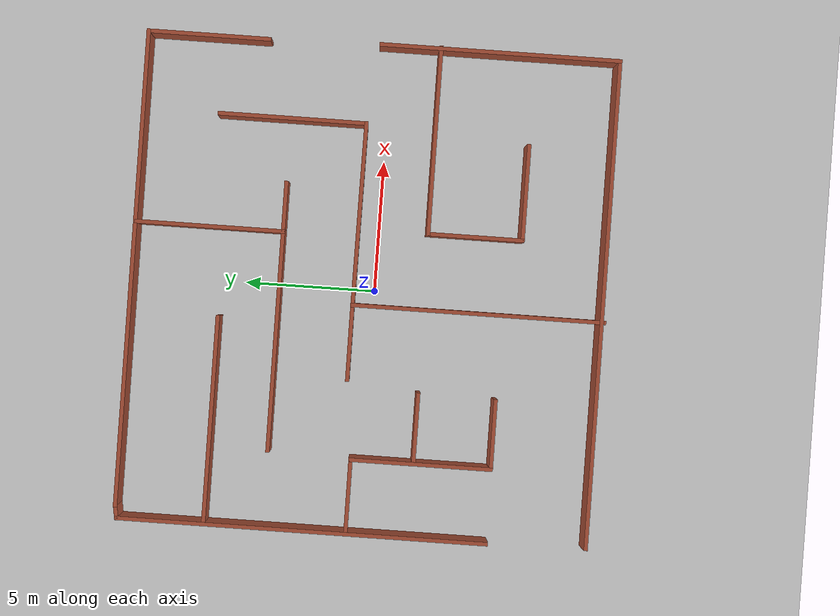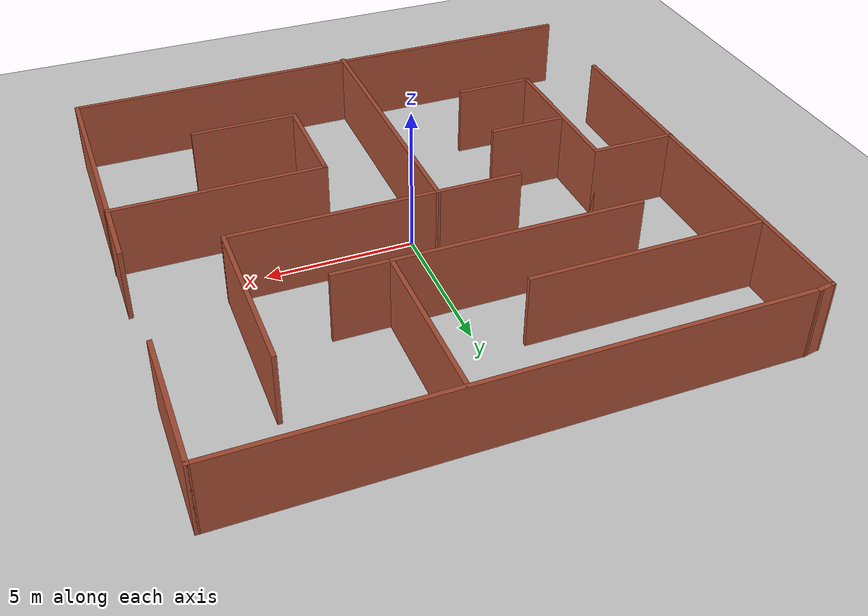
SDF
<sdf version="1.6">
 <world name="default">
  <light name="sun" type="directional">
   <pose>0 0 10 0 -0 0</pose>
   <diffuse>0.8 0.8 0.8 1</diffuse>
   <specular>0.2 0.2 0.2 1</specular>
   <attenuation>
    <range>1000</range>
    <constant>0.9</constant>
    <linear>0.01</linear>
    <quadratic>0.001</quadratic>
   </attenuation>
   <direction>-0.5 0.1 -0.9</direction>
  </light>
  <model name="ground_plane">
   <static>1</static>
   <link name="link">
    <collision name="collision">
     <geometry><plane><normal>0 0 1</normal><size>100 100</size></plane></geometry>
     <surface>
      <contact><collide_bitmask>65535</collide_bitmask></contact>
      <friction><ode><mu>100</mu><mu2>50</mu2></ode></friction>
     </surface>
    </collision>
    <visual name="visual">
     <cast_shadows>0</cast_shadows>
     <geometry><plane><normal>0 0 1</normal><size>100 100</size></plane></geometry>
     <material>
      <script><uri>file://media/materials/scripts/gazebo.material</uri><name>Gazebo/Grey</name></script>
     </material>
    </visual>
   </link>
  </model>
  <gravity>0 0 -9.8</gravity>
  <magnetic_field>6e-06 2.3e-05 -4.2e-05</magnetic_field>
  <atmosphere type="adiabatic"/>
  <physics name="default_physics" default="0" type="ode">
   <max_step_size>0.001</max_step_size>
   <real_time_factor>1</real_time_factor>
   <real_time_update_rate>1000</real_time_update_rate>
  </physics>
  <scene><ambient>0.4 0.4 0.4 1</ambient><background>0.7 0.7 0.7 1</background><shadows>1</shadows></scene>
  <audio><device>default</device></audio>
  <spherical_coordinates>
   <surface_model>EARTH_WGS84</surface_model>
   <latitude_deg>0</latitude_deg>
   <longitude_deg>0</longitude_deg>
   <elevation>0</elevation>
   <heading_deg>0</heading_deg>
  </spherical_coordinates>
  <model name="maze">
   <link name="Wall_11">
    <pose>11.0661 -4.64241 0 0 0 -1.5708</pose>
    <visual name="Wall_11_Visual">
     <pose>0 0 1.25 0 -0 0</pose>
     <geometry><box><size>9.25 0.15 2.5</size></box></geometry>
     <material>
      <script><uri>file://media/materials/scripts/gazebo.material</uri><name>Gazebo/Bricks</name></script>
      <ambient>1 1 1 1</ambient>
     </material>
     <meta><layer>0</layer></meta>
    </visual>
    <collision name="Wall_11_Collision">
     <pose>0 0 1.25 0 -0 0</pose>
     <geometry><box><size>9.25 0.15 2.5</size></box></geometry>
     <surface>
      <friction>
       <ode><mu>1</mu><mu2>1</mu2><fdir1>0 0 0</fdir1><slip1>0</slip1><slip2>0</slip2></ode>
       <torsional>
        <coefficient>1</coefficient>
        <patch_radius>0</patch_radius>
        <surface_radius>0</surface_radius>
        <use_patch_radius>1</use_patch_radius>
        <ode><slip>0</slip></ode>
       </torsional>
      </friction>
      <bounce><restitution_coefficient>0</restitution_coefficient><threshold>1e+06</threshold></bounce>
      <contact>
       <collide_without_contact>0</collide_without_contact>
       <collide_without_contact_bitmask>1</collide_without_contact_bitmask>
       <collide_bitmask>1</collide_bitmask>
       <ode>
        <soft_cfm>0</soft_cfm>
        <soft_erp>0.2</soft_erp>
        <kp>1e+13</kp>
        <kd>1</kd>
        <max_vel>0.01</max_vel>
        <min_depth>0</min_depth>
       </ode>
       <bullet>
        <split_impulse>1</split_impulse>
        <split_impulse_penetration_threshold>-0.01</split_impulse_penetration_threshold>
        <soft_cfm>0</soft_cfm>
        <soft_erp>0.2</soft_erp>
        <kp>1e+13</kp>
        <kd>1</kd>
       </bullet>
      </contact>
     </surface>
    </collision>
   </link>
   <link name="Wall_12">
    <pose>1.76615 -9.19241 0 0 -0 3.14159</pose>
    <visual name="Wall_12_Visual">
     <pose>0 0 1.25 0 -0 0</pose>
     <geometry><box><size>18.75 0.15 2.5</size></box></geometry>
     <material>
      <script><uri>file://media/materials/scripts/gazebo.material</uri><name>Gazebo/Bricks</name></script>
      <ambient>1 1 1 1</ambient>
     </material>
     <meta><layer>0</layer></meta>
    </visual>
    <collision name="Wall_12_Collision">
     <pose>0 0 1.25 0 -0 0</pose>
     <geometry><box><size>18.75 0.15 2.5</size></box></geometry>
     <surface>
      <friction>
       <ode><mu>1</mu><mu2>1</mu2><fdir1>0 0 0</fdir1><slip1>0</slip1><slip2>0</slip2></ode>
       <torsional>
        <coefficient>1</coefficient>
        <patch_radius>0</patch_radius>
        <surface_radius>0</surface_radius>
        <use_patch_radius>1</use_patch_radius>
        <ode><slip>0</slip></ode>
       </torsional>
      </friction>
      <bounce><restitution_coefficient>0</restitution_coefficient><threshold>1e+06</threshold></bounce>
      <contact>
       <collide_without_contact>0</collide_without_contact>
       <collide_without_contact_bitmask>1</collide_without_contact_bitmask>
       <collide_bitmask>1</collide_bitmask>
       <ode>
        <soft_cfm>0</soft_cfm>
        <soft_erp>0.2</soft_erp>
        <kp>1e+13</kp>
        <kd>1</kd>
        <max_vel>0.01</max_vel>
        <min_depth>0</min_depth>
       </ode>
       <bullet>
        <split_impulse>1</split_impulse>
        <split_impulse_penetration_threshold>-0.01</split_impulse_penetration_threshold>
        <soft_cfm>0</soft_cfm>
        <soft_erp>0.2</soft_erp>
        <kp>1e+13</kp>
        <kd>1</kd>
       </bullet>
      </contact>
     </surface>
    </collision>
   </link>
   <link name="Wall_16">
    <pose>-7.62363 1.66028 0 0 -0 1.5708</pose>
    <visual name="Wall_16_Visual">
     <pose>0 0 1.25 0 -0 0</pose>
     <geometry><box><size>14.25 0.15 2.5</size></box></geometry>
     <material>
      <script><uri>file://media/materials/scripts/gazebo.material</uri><name>Gazebo/Bricks</name></script>
      <ambient>1 1 1 1</ambient>
     </material>
     <meta><layer>0</layer></meta>
    </visual>
    <collision name="Wall_16_Collision">
     <pose>0 0 1.25 0 -0 0</pose>
     <geometry><box><size>14.25 0.15 2.5</size></box></geometry>
     <surface>
      <friction>
       <ode><mu>1</mu><mu2>1</mu2><fdir1>0 0 0</fdir1><slip1>0</slip1><slip2>0</slip2></ode>
       <torsional>
        <coefficient>1</coefficient>
        <patch_radius>0</patch_radius>
        <surface_radius>0</surface_radius>
        <use_patch_radius>1</use_patch_radius>
        <ode><slip>0</slip></ode>
       </torsional>
      </friction>
      <bounce><restitution_coefficient>0</restitution_coefficient><threshold>1e+06</threshold></bounce>
      <contact>
       <collide_without_contact>0</collide_without_contact>
       <collide_without_contact_bitmask>1</collide_without_contact_bitmask>
       <collide_bitmask>1</collide_bitmask>
       <ode>
        <soft_cfm>0</soft_cfm>
        <soft_erp>0.2</soft_erp>
        <kp>1e+13</kp>
        <kd>1</kd>
        <max_vel>0.01</max_vel>
        <min_depth>0</min_depth>
       </ode>
       <bullet>
        <split_impulse>1</split_impulse>
        <split_impulse_penetration_threshold>-0.01</split_impulse_penetration_threshold>
        <soft_cfm>0</soft_cfm>
        <soft_erp>0.2</soft_erp>
        <kp>1e+13</kp>
        <kd>1</kd>
       </bullet>
      </contact>
     </surface>
    </collision>
   </link>
   <link name="Wall_17">
    <pose>-7.38232 8.75141 0 0 -0 0.16881</pose>
    <visual name="Wall_17_Visual">
     <pose>0 0 1.25 0 -0 0</pose>
     <geometry><box><size>0.639583 0.15 2.5</size></box></geometry>
     <material>
      <script><uri>file://media/materials/scripts/gazebo.material</uri><name>Gazebo/Bricks</name></script>
      <ambient>1 1 1 1</ambient>
     </material>
     <meta><layer>0</layer></meta>
    </visual>
    <collision name="Wall_17_Collision">
     <pose>0 0 1.25 0 -0 0</pose>
     <geometry><box><size>0.639583 0.15 2.5</size></box></geometry>
     <surface>
      <friction>
       <ode><mu>1</mu><mu2>1</mu2><fdir1>0 0 0</fdir1><slip1>0</slip1><slip2>0</slip2></ode>
       <torsional>
        <coefficient>1</coefficient>
        <patch_radius>0</patch_radius>
        <surface_radius>0</surface_radius>
        <use_patch_radius>1</use_patch_radius>
        <ode><slip>0</slip></ode>
       </torsional>
      </friction>
      <bounce><restitution_coefficient>0</restitution_coefficient><threshold>1e+06</threshold></bounce>
      <contact>
       <collide_without_contact>0</collide_without_contact>
       <collide_without_contact_bitmask>1</collide_without_contact_bitmask>
       <collide_bitmask>1</collide_bitmask>
       <ode>
        <soft_cfm>0</soft_cfm>
        <soft_erp>0.2</soft_erp>
        <kp>1e+13</kp>
        <kd>1</kd>
        <max_vel>0.01</max_vel>
        <min_depth>0</min_depth>
       </ode>
       <bullet>
        <split_impulse>1</split_impulse>
        <split_impulse_penetration_threshold>-0.01</split_impulse_penetration_threshold>
        <soft_cfm>0</soft_cfm>
        <soft_erp>0.2</soft_erp>
        <kp>1e+13</kp>
        <kd>1</kd>
       </bullet>
      </contact>
     </surface>
    </collision>
   </link>
   <link name="Wall_19">
    <pose>-3.65457 5.40105 0 0 -0 0</pose>
    <visual name="Wall_19_Visual">
     <pose>0 0 1.25 0 -0 0</pose>
     <geometry><box><size>8 0.15 2.5</size></box></geometry>
     <material>
      <script><uri>file://media/materials/scripts/gazebo.material</uri><name>Gazebo/Bricks</name></script>
      <ambient>1 1 1 1</ambient>
     </material>
     <meta><layer>0</layer></meta>
    </visual>
    <collision name="Wall_19_Collision">
     <pose>0 0 1.25 0 -0 0</pose>
     <geometry><box><size>8 0.15 2.5</size></box></geometry>
     <surface>
      <friction>
       <ode><mu>1</mu><mu2>1</mu2><fdir1>0 0 0</fdir1><slip1>0</slip1><slip2>0</slip2></ode>
       <torsional>
        <coefficient>1</coefficient>
        <patch_radius>0</patch_radius>
        <surface_radius>0</surface_radius>
        <use_patch_radius>1</use_patch_radius>
        <ode><slip>0</slip></ode>
       </torsional>
      </friction>
      <bounce><restitution_coefficient>0</restitution_coefficient><threshold>1e+06</threshold></bounce>
      <contact>
       <collide_without_contact>0</collide_without_contact>
       <collide_without_contact_bitmask>1</collide_without_contact_bitmask>
       <collide_bitmask>1</collide_bitmask>
       <ode>
        <soft_cfm>0</soft_cfm>
        <soft_erp>0.2</soft_erp>
        <kp>1e+13</kp>
        <kd>1</kd>
        <max_vel>0.01</max_vel>
        <min_depth>0</min_depth>
       </ode>
       <bullet>
        <split_impulse>1</split_impulse>
        <split_impulse_penetration_threshold>-0.01</split_impulse_penetration_threshold>
        <soft_cfm>0</soft_cfm>
        <soft_erp>0.2</soft_erp>
        <kp>1e+13</kp>
        <kd>1</kd>
       </bullet>
      </contact>
     </surface>
    </collision>
   </link>
   <link name="Wall_21">
    <pose>-6.20778 -0.02539 0 0 -0 0</pose>
    <visual name="Wall_21_Visual">
     <pose>0 0 1.25 0 -0 0</pose>
     <geometry><box><size>3 0.15 2.5</size></box></geometry>
     <material>
      <script><uri>file://media/materials/scripts/gazebo.material</uri><name>Gazebo/Bricks</name></script>
      <ambient>1 1 1 1</ambient>
     </material>
     <meta><layer>0</layer></meta>
    </visual>
    <collision name="Wall_21_Collision">
     <pose>0 0 1.25 0 -0 0</pose>
     <geometry><box><size>3 0.15 2.5</size></box></geometry>
     <surface>
      <friction>
       <ode><mu>1</mu><mu2>1</mu2><fdir1>0 0 0</fdir1><slip1>0</slip1><slip2>0</slip2></ode>
       <torsional>
        <coefficient>1</coefficient>
        <patch_radius>0</patch_radius>
        <surface_radius>0</surface_radius>
        <use_patch_radius>1</use_patch_radius>
        <ode><slip>0</slip></ode>
       </torsional>
      </friction>
      <bounce><restitution_coefficient>0</restitution_coefficient><threshold>1e+06</threshold></bounce>
      <contact>
       <collide_without_contact>0</collide_without_contact>
       <collide_without_contact_bitmask>1</collide_without_contact_bitmask>
       <collide_bitmask>1</collide_bitmask>
       <ode>
        <soft_cfm>0</soft_cfm>
        <soft_erp>0.2</soft_erp>
        <kp>1e+13</kp>
        <kd>1</kd>
        <max_vel>0.01</max_vel>
        <min_depth>0</min_depth>
       </ode>
       <bullet>
        <split_impulse>1</split_impulse>
        <split_impulse_penetration_threshold>-0.01</split_impulse_penetration_threshold>
        <soft_cfm>0</soft_cfm>
        <soft_erp>0.2</soft_erp>
        <kp>1e+13</kp>
        <kd>1</kd>
       </bullet>
      </contact>
     </surface>
    </collision>
   </link>
   <link name="Wall_22">
    <pose>-4.78278 -2.70039 0 0 0 -1.5708</pose>
    <visual name="Wall_22_Visual">
     <pose>0 0 1.25 0 -0 0</pose>
     <geometry><box><size>5.5 0.15 2.5</size></box></geometry>
     <material>
      <script><uri>file://media/materials/scripts/gazebo.material</uri><name>Gazebo/Bricks</name></script>
      <ambient>1 1 1 1</ambient>
     </material>
     <meta><layer>0</layer></meta>
    </visual>
    <collision name="Wall_22_Collision">
     <pose>0 0 1.25 0 -0 0</pose>
     <geometry><box><size>5.5 0.15 2.5</size></box></geometry>
     <surface>
      <friction>
       <ode><mu>1</mu><mu2>1</mu2><fdir1>0 0 0</fdir1><slip1>0</slip1><slip2>0</slip2></ode>
       <torsional>
        <coefficient>1</coefficient>
        <patch_radius>0</patch_radius>
        <surface_radius>0</surface_radius>
        <use_patch_radius>1</use_patch_radius>
        <ode><slip>0</slip></ode>
       </torsional>
      </friction>
      <bounce><restitution_coefficient>0</restitution_coefficient><threshold>1e+06</threshold></bounce>
      <contact>
       <collide_without_contact>0</collide_without_contact>
       <collide_without_contact_bitmask>1</collide_without_contact_bitmask>
       <collide_bitmask>1</collide_bitmask>
       <ode>
        <soft_cfm>0</soft_cfm>
        <soft_erp>0.2</soft_erp>
        <kp>1e+13</kp>
        <kd>1</kd>
        <max_vel>0.01</max_vel>
        <min_depth>0</min_depth>
       </ode>
       <bullet>
        <split_impulse>1</split_impulse>
        <split_impulse_penetration_threshold>-0.01</split_impulse_penetration_threshold>
        <soft_cfm>0</soft_cfm>
        <soft_erp>0.2</soft_erp>
        <kp>1e+13</kp>
        <kd>1</kd>
       </bullet>
      </contact>
     </surface>
    </collision>
   </link>
   <link name="Wall_24">
    <pose>-3.48278 -5.37539 0 0 -0 0</pose>
    <visual name="Wall_24_Visual">
     <pose>0 0 1.25 0 -0 0</pose>
     <geometry><box><size>2.75 0.15 2.5</size></box></geometry>
     <material>
      <script><uri>file://media/materials/scripts/gazebo.material</uri><name>Gazebo/Bricks</name></script>
      <ambient>1 1 1 1</ambient>
     </material>
     <meta><layer>0</layer></meta>
    </visual>
    <collision name="Wall_24_Collision">
     <pose>0 0 1.25 0 -0 0</pose>
     <geometry><box><size>2.75 0.15 2.5</size></box></geometry>
     <surface>
      <friction>
       <ode><mu>1</mu><mu2>1</mu2><fdir1>0 0 0</fdir1><slip1>0</slip1><slip2>0</slip2></ode>
       <torsional>
        <coefficient>1</coefficient>
        <patch_radius>0</patch_radius>
        <surface_radius>0</surface_radius>
        <use_patch_radius>1</use_patch_radius>
        <ode><slip>0</slip></ode>
       </torsional>
      </friction>
      <bounce><restitution_coefficient>0</restitution_coefficient><threshold>1e+06</threshold></bounce>
      <contact>
       <collide_without_contact>0</collide_without_contact>
       <collide_without_contact_bitmask>1</collide_without_contact_bitmask>
       <collide_bitmask>1</collide_bitmask>
       <ode>
        <soft_cfm>0</soft_cfm>
        <soft_erp>0.2</soft_erp>
        <kp>1e+13</kp>
        <kd>1</kd>
        <max_vel>0.01</max_vel>
        <min_depth>0</min_depth>
       </ode>
       <bullet>
        <split_impulse>1</split_impulse>
        <split_impulse_penetration_threshold>-0.01</split_impulse_penetration_threshold>
        <soft_cfm>0</soft_cfm>
        <soft_erp>0.2</soft_erp>
        <kp>1e+13</kp>
        <kd>1</kd>
       </bullet>
      </contact>
     </surface>
    </collision>
   </link>
   <link name="Wall_26">
    <pose>-3.43335 -2.41941 0 0 -0 0</pose>
    <visual name="Wall_26_Visual">
     <pose>0 0 1.25 0 -0 0</pose>
     <geometry><box><size>2.75 0.15 2.5</size></box></geometry>
     <material>
      <script><uri>file://media/materials/scripts/gazebo.material</uri><name>Gazebo/Bricks</name></script>
      <ambient>1 1 1 1</ambient>
     </material>
     <meta><layer>0</layer></meta>
    </visual>
    <collision name="Wall_26_Collision">
     <pose>0 0 1.25 0 -0 0</pose>
     <geometry><box><size>2.75 0.15 2.5</size></box></geometry>
     <surface>
      <friction>
       <ode><mu>1</mu><mu2>1</mu2><fdir1>0 0 0</fdir1><slip1>0</slip1><slip2>0</slip2></ode>
       <torsional>
        <coefficient>1</coefficient>
        <patch_radius>0</patch_radius>
        <surface_radius>0</surface_radius>
        <use_patch_radius>1</use_patch_radius>
        <ode><slip>0</slip></ode>
       </torsional>
      </friction>
      <bounce><restitution_coefficient>0</restitution_coefficient><threshold>1e+06</threshold></bounce>
      <contact>
       <collide_without_contact>0</collide_without_contact>
       <collide_without_contact_bitmask>1</collide_without_contact_bitmask>
       <collide_bitmask>1</collide_bitmask>
       <ode>
        <soft_cfm>0</soft_cfm>
        <soft_erp>0.2</soft_erp>
        <kp>1e+13</kp>
        <kd>1</kd>
        <max_vel>0.01</max_vel>
        <min_depth>0</min_depth>
       </ode>
       <bullet>
        <split_impulse>1</split_impulse>
        <split_impulse_penetration_threshold>-0.01</split_impulse_penetration_threshold>
        <soft_cfm>0</soft_cfm>
        <soft_erp>0.2</soft_erp>
        <kp>1e+13</kp>
        <kd>1</kd>
       </bullet>
      </contact>
     </surface>
    </collision>
   </link>
   <link name="Wall_28">
    <pose>7.54376 -2.36621 0 0 -0 3.14159</pose>
    <visual name="Wall_28_Visual">
     <pose>0 0 1.25 0 -0 0</pose>
     <geometry><box><size>7.25 0.15 2.5</size></box></geometry>
     <material>
      <script><uri>file://media/materials/scripts/gazebo.material</uri><name>Gazebo/Bricks</name></script>
      <ambient>1 1 1 1</ambient>
     </material>
     <meta><layer>0</layer></meta>
    </visual>
    <collision name="Wall_28_Collision">
     <pose>0 0 1.25 0 -0 0</pose>
     <geometry><box><size>7.25 0.15 2.5</size></box></geometry>
     <surface>
      <friction>
       <ode><mu>1</mu><mu2>1</mu2><fdir1>0 0 0</fdir1><slip1>0</slip1><slip2>0</slip2></ode>
       <torsional>
        <coefficient>1</coefficient>
        <patch_radius>0</patch_radius>
        <surface_radius>0</surface_radius>
        <use_patch_radius>1</use_patch_radius>
        <ode><slip>0</slip></ode>
       </torsional>
      </friction>
      <bounce><restitution_coefficient>0</restitution_coefficient><threshold>1e+06</threshold></bounce>
      <contact>
       <collide_without_contact>0</collide_without_contact>
       <collide_without_contact_bitmask>1</collide_without_contact_bitmask>
       <collide_bitmask>1</collide_bitmask>
       <ode>
        <soft_cfm>0</soft_cfm>
        <soft_erp>0.2</soft_erp>
        <kp>1e+13</kp>
        <kd>1</kd>
        <max_vel>0.01</max_vel>
        <min_depth>0</min_depth>
       </ode>
       <bullet>
        <split_impulse>1</split_impulse>
        <split_impulse_penetration_threshold>-0.01</split_impulse_penetration_threshold>
        <soft_cfm>0</soft_cfm>
        <soft_erp>0.2</soft_erp>
        <kp>1e+13</kp>
        <kd>1</kd>
       </bullet>
      </contact>
     </surface>
    </collision>
   </link>
   <link name="Wall_29">
    <pose>3.99376 -4.16621 0 0 0 -1.5708</pose>
    <visual name="Wall_29_Visual">
     <pose>0 0 1.25 0 -0 0</pose>
     <geometry><box><size>3.75 0.15 2.5</size></box></geometry>
     <material>
      <script><uri>file://media/materials/scripts/gazebo.material</uri><name>Gazebo/Bricks</name></script>
      <ambient>1 1 1 1</ambient>
     </material>
     <meta><layer>0</layer></meta>
    </visual>
    <collision name="Wall_29_Collision">
     <pose>0 0 1.25 0 -0 0</pose>
     <geometry><box><size>3.75 0.15 2.5</size></box></geometry>
     <surface>
      <friction>
       <ode><mu>1</mu><mu2>1</mu2><fdir1>0 0 0</fdir1><slip1>0</slip1><slip2>0</slip2></ode>
       <torsional>
        <coefficient>1</coefficient>
        <patch_radius>0</patch_radius>
        <surface_radius>0</surface_radius>
        <use_patch_radius>1</use_patch_radius>
        <ode><slip>0</slip></ode>
       </torsional>
      </friction>
      <bounce><restitution_coefficient>0</restitution_coefficient><threshold>1e+06</threshold></bounce>
      <contact>
       <collide_without_contact>0</collide_without_contact>
       <collide_without_contact_bitmask>1</collide_without_contact_bitmask>
       <collide_bitmask>1</collide_bitmask>
       <ode>
        <soft_cfm>0</soft_cfm>
        <soft_erp>0.2</soft_erp>
        <kp>1e+13</kp>
        <kd>1</kd>
        <max_vel>0.01</max_vel>
        <min_depth>0</min_depth>
       </ode>
       <bullet>
        <split_impulse>1</split_impulse>
        <split_impulse_penetration_threshold>-0.01</split_impulse_penetration_threshold>
        <soft_cfm>0</soft_cfm>
        <soft_erp>0.2</soft_erp>
        <kp>1e+13</kp>
        <kd>1</kd>
       </bullet>
      </contact>
     </surface>
    </collision>
   </link>
   <link name="Wall_30">
    <pose>5.79376 -5.96621 0 0 -0 0</pose>
    <visual name="Wall_30_Visual">
     <pose>0 0 1.25 0 -0 0</pose>
     <geometry><box><size>3.75 0.15 2.5</size></box></geometry>
     <material>
      <script><uri>file://media/materials/scripts/gazebo.material</uri><name>Gazebo/Bricks</name></script>
      <ambient>1 1 1 1</ambient>
     </material>
     <meta><layer>0</layer></meta>
    </visual>
    <collision name="Wall_30_Collision">
     <pose>0 0 1.25 0 -0 0</pose>
     <geometry><box><size>3.75 0.15 2.5</size></box></geometry>
     <surface>
      <friction>
       <ode><mu>1</mu><mu2>1</mu2><fdir1>0 0 0</fdir1><slip1>0</slip1><slip2>0</slip2></ode>
       <torsional>
        <coefficient>1</coefficient>
        <patch_radius>0</patch_radius>
        <surface_radius>0</surface_radius>
        <use_patch_radius>1</use_patch_radius>
        <ode><slip>0</slip></ode>
       </torsional>
      </friction>
      <bounce><restitution_coefficient>0</restitution_coefficient><threshold>1e+06</threshold></bounce>
      <contact>
       <collide_without_contact>0</collide_without_contact>
       <collide_without_contact_bitmask>1</collide_without_contact_bitmask>
       <collide_bitmask>1</collide_bitmask>
       <ode>
        <soft_cfm>0</soft_cfm>
        <soft_erp>0.2</soft_erp>
        <kp>1e+13</kp>
        <kd>1</kd>
        <max_vel>0.01</max_vel>
        <min_depth>0</min_depth>
       </ode>
       <bullet>
        <split_impulse>1</split_impulse>
        <split_impulse_penetration_threshold>-0.01</split_impulse_penetration_threshold>
        <soft_cfm>0</soft_cfm>
        <soft_erp>0.2</soft_erp>
        <kp>1e+13</kp>
        <kd>1</kd>
       </bullet>
      </contact>
     </surface>
    </collision>
   </link>
   <link name="Wall_32">
    <pose>1.09209 -4.48226 0 0 -0 1.5708</pose>
    <visual name="Wall_32_Visual">
     <pose>0 0 1.25 0 -0 0</pose>
     <geometry><box><size>9.75 0.15 2.5</size></box></geometry>
     <material>
      <script><uri>file://media/materials/scripts/gazebo.material</uri><name>Gazebo/Bricks</name></script>
      <ambient>1 1 1 1</ambient>
     </material>
     <meta><layer>0</layer></meta>
    </visual>
    <collision name="Wall_32_Collision">
     <pose>0 0 1.25 0 -0 0</pose>
     <geometry><box><size>9.75 0.15 2.5</size></box></geometry>
     <surface>
      <friction>
       <ode><mu>1</mu><mu2>1</mu2><fdir1>0 0 0</fdir1><slip1>0</slip1><slip2>0</slip2></ode>
       <torsional>
        <coefficient>1</coefficient>
        <patch_radius>0</patch_radius>
        <surface_radius>0</surface_radius>
        <use_patch_radius>1</use_patch_radius>
        <ode><slip>0</slip></ode>
       </torsional>
      </friction>
      <bounce><restitution_coefficient>0</restitution_coefficient><threshold>1e+06</threshold></bounce>
      <contact>
       <collide_without_contact>0</collide_without_contact>
       <collide_without_contact_bitmask>1</collide_without_contact_bitmask>
       <collide_bitmask>1</collide_bitmask>
       <ode>
        <soft_cfm>0</soft_cfm>
        <soft_erp>0.2</soft_erp>
        <kp>1e+13</kp>
        <kd>1</kd>
        <max_vel>0.01</max_vel>
        <min_depth>0</min_depth>
       </ode>
       <bullet>
        <split_impulse>1</split_impulse>
        <split_impulse_penetration_threshold>-0.01</split_impulse_penetration_threshold>
        <soft_cfm>0</soft_cfm>
        <soft_erp>0.2</soft_erp>
        <kp>1e+13</kp>
        <kd>1</kd>
       </bullet>
      </contact>
     </surface>
    </collision>
   </link>
   <link name="Wall_33">
    <pose>4.55649 0.296667 0 0 0 -0.006083</pose>
    <visual name="Wall_33_Visual">
     <pose>0 0 1.25 0 -0 0</pose>
     <geometry><box><size>7.07892 0.15 2.5</size></box></geometry>
     <material>
      <script><uri>file://media/materials/scripts/gazebo.material</uri><name>Gazebo/Bricks</name></script>
      <ambient>1 1 1 1</ambient>
     </material>
     <meta><layer>0</layer></meta>
    </visual>
    <collision name="Wall_33_Collision">
     <pose>0 0 1.25 0 -0 0</pose>
     <geometry><box><size>7.07892 0.15 2.5</size></box></geometry>
     <surface>
      <friction>
       <ode><mu>1</mu><mu2>1</mu2><fdir1>0 0 0</fdir1><slip1>0</slip1><slip2>0</slip2></ode>
       <torsional>
        <coefficient>1</coefficient>
        <patch_radius>0</patch_radius>
        <surface_radius>0</surface_radius>
        <use_patch_radius>1</use_patch_radius>
        <ode><slip>0</slip></ode>
       </torsional>
      </friction>
      <bounce><restitution_coefficient>0</restitution_coefficient><threshold>1e+06</threshold></bounce>
      <contact>
       <collide_without_contact>0</collide_without_contact>
       <collide_without_contact_bitmask>1</collide_without_contact_bitmask>
       <collide_bitmask>1</collide_bitmask>
       <ode>
        <soft_cfm>0</soft_cfm>
        <soft_erp>0.2</soft_erp>
        <kp>1e+13</kp>
        <kd>1</kd>
        <max_vel>0.01</max_vel>
        <min_depth>0</min_depth>
       </ode>
       <bullet>
        <split_impulse>1</split_impulse>
        <split_impulse_penetration_threshold>-0.01</split_impulse_penetration_threshold>
        <soft_cfm>0</soft_cfm>
        <soft_erp>0.2</soft_erp>
        <kp>1e+13</kp>
        <kd>1</kd>
       </bullet>
      </contact>
     </surface>
    </collision>
   </link>
   <link name="Wall_35">
    <pose>8.02088 3.07559 0 0 -0 1.5708</pose>
    <visual name="Wall_35_Visual">
     <pose>0 0 1.25 0 -0 0</pose>
     <geometry><box><size>5.75 0.15 2.5</size></box></geometry>
     <material>
      <script><uri>file://media/materials/scripts/gazebo.material</uri><name>Gazebo/Bricks</name></script>
      <ambient>1 1 1 1</ambient>
     </material>
     <meta><layer>0</layer></meta>
    </visual>
    <collision name="Wall_35_Collision">
     <pose>0 0 1.25 0 -0 0</pose>
     <geometry><box><size>5.75 0.15 2.5</size></box></geometry>
     <surface>
      <friction>
       <ode><mu>1</mu><mu2>1</mu2><fdir1>0 0 0</fdir1><slip1>0</slip1><slip2>0</slip2></ode>
       <torsional>
        <coefficient>1</coefficient>
        <patch_radius>0</patch_radius>
        <surface_radius>0</surface_radius>
        <use_patch_radius>1</use_patch_radius>
        <ode><slip>0</slip></ode>
       </torsional>
      </friction>
      <bounce><restitution_coefficient>0</restitution_coefficient><threshold>1e+06</threshold></bounce>
      <contact>
       <collide_without_contact>0</collide_without_contact>
       <collide_without_contact_bitmask>1</collide_without_contact_bitmask>
       <collide_bitmask>1</collide_bitmask>
       <ode>
        <soft_cfm>0</soft_cfm>
        <soft_erp>0.2</soft_erp>
        <kp>1e+13</kp>
        <kd>1</kd>
        <max_vel>0.01</max_vel>
        <min_depth>0</min_depth>
       </ode>
       <bullet>
        <split_impulse>1</split_impulse>
        <split_impulse_penetration_threshold>-0.01</split_impulse_penetration_threshold>
        <soft_cfm>0</soft_cfm>
        <soft_erp>0.2</soft_erp>
        <kp>1e+13</kp>
        <kd>1</kd>
       </bullet>
      </contact>
     </surface>
    </collision>
   </link>
   <link name="Wall_37">
    <pose>-0.332911 0.31774 0 0 -0 3.14159</pose>
    <visual name="Wall_37_Visual">
     <pose>0 0 1.25 0 -0 0</pose>
     <geometry><box><size>3 0.15 2.5</size></box></geometry>
     <material>
      <script><uri>file://media/materials/scripts/gazebo.material</uri><name>Gazebo/Bricks</name></script>
      <ambient>1 1 1 1</ambient>
     </material>
     <meta><layer>0</layer></meta>
    </visual>
    <collision name="Wall_37_Collision">
     <pose>0 0 1.25 0 -0 0</pose>
     <geometry><box><size>3 0.15 2.5</size></box></geometry>
     <surface>
      <friction>
       <ode><mu>1</mu><mu2>1</mu2><fdir1>0 0 0</fdir1><slip1>0</slip1><slip2>0</slip2></ode>
       <torsional>
        <coefficient>1</coefficient>
        <patch_radius>0</patch_radius>
        <surface_radius>0</surface_radius>
        <use_patch_radius>1</use_patch_radius>
        <ode><slip>0</slip></ode>
       </torsional>
      </friction>
      <bounce><restitution_coefficient>0</restitution_coefficient><threshold>1e+06</threshold></bounce>
      <contact>
       <collide_without_contact>0</collide_without_contact>
       <collide_without_contact_bitmask>1</collide_without_contact_bitmask>
       <collide_bitmask>1</collide_bitmask>
       <ode>
        <soft_cfm>0</soft_cfm>
        <soft_erp>0.2</soft_erp>
        <kp>1e+13</kp>
        <kd>1</kd>
        <max_vel>0.01</max_vel>
        <min_depth>0</min_depth>
       </ode>
       <bullet>
        <split_impulse>1</split_impulse>
        <split_impulse_penetration_threshold>-0.01</split_impulse_penetration_threshold>
        <soft_cfm>0</soft_cfm>
        <soft_erp>0.2</soft_erp>
        <kp>1e+13</kp>
        <kd>1</kd>
       </bullet>
      </contact>
     </surface>
    </collision>
   </link>
   <link name="Wall_39">
    <pose>3.69891 5.95268 0 0 0 -1.5708</pose>
    <visual name="Wall_39_Visual">
     <pose>0 0 1.25 0 -0 0</pose>
     <geometry><box><size>5.75 0.15 2.5</size></box></geometry>
     <material>
      <script><uri>file://media/materials/scripts/gazebo.material</uri><name>Gazebo/Bricks</name></script>
      <ambient>1 1 1 1</ambient>
     </material>
     <meta><layer>0</layer></meta>
    </visual>
    <collision name="Wall_39_Collision">
     <pose>0 0 1.25 0 -0 0</pose>
     <geometry><box><size>5.75 0.15 2.5</size></box></geometry>
     <surface>
      <friction>
       <ode><mu>1</mu><mu2>1</mu2><fdir1>0 0 0</fdir1><slip1>0</slip1><slip2>0</slip2></ode>
       <torsional>
        <coefficient>1</coefficient>
        <patch_radius>0</patch_radius>
        <surface_radius>0</surface_radius>
        <use_patch_radius>1</use_patch_radius>
        <ode><slip>0</slip></ode>
       </torsional>
      </friction>
      <bounce><restitution_coefficient>0</restitution_coefficient><threshold>1e+06</threshold></bounce>
      <contact>
       <collide_without_contact>0</collide_without_contact>
       <collide_without_contact_bitmask>1</collide_without_contact_bitmask>
       <collide_bitmask>1</collide_bitmask>
       <ode>
        <soft_cfm>0</soft_cfm>
        <soft_erp>0.2</soft_erp>
        <kp>1e+13</kp>
        <kd>1</kd>
        <max_vel>0.01</max_vel>
        <min_depth>0</min_depth>
       </ode>
       <bullet>
        <split_impulse>1</split_impulse>
        <split_impulse_penetration_threshold>-0.01</split_impulse_penetration_threshold>
        <soft_cfm>0</soft_cfm>
        <soft_erp>0.2</soft_erp>
        <kp>1e+13</kp>
        <kd>1</kd>
       </bullet>
      </contact>
     </surface>
    </collision>
   </link>
   <link name="Wall_41">
    <pose>-0.476091 3.15267 0 0 -0 3.14159</pose>
    <visual name="Wall_41_Visual">
     <pose>0 0 1.25 0 -0 0</pose>
     <geometry><box><size>8.5 0.15 2.5</size></box></geometry>
     <material>
      <script><uri>file://media/materials/scripts/gazebo.material</uri><name>Gazebo/Bricks</name></script>
      <ambient>1 1 1 1</ambient>
     </material>
     <meta><layer>0</layer></meta>
    </visual>
    <collision name="Wall_41_Collision">
     <pose>0 0 1.25 0 -0 0</pose>
     <geometry><box><size>8.5 0.15 2.5</size></box></geometry>
     <surface>
      <friction>
       <ode><mu>1</mu><mu2>1</mu2><fdir1>0 0 0</fdir1><slip1>0</slip1><slip2>0</slip2></ode>
       <torsional>
        <coefficient>1</coefficient>
        <patch_radius>0</patch_radius>
        <surface_radius>0</surface_radius>
        <use_patch_radius>1</use_patch_radius>
        <ode><slip>0</slip></ode>
       </torsional>
      </friction>
      <bounce><restitution_coefficient>0</restitution_coefficient><threshold>1e+06</threshold></bounce>
      <contact>
       <collide_without_contact>0</collide_without_contact>
       <collide_without_contact_bitmask>1</collide_without_contact_bitmask>
       <collide_bitmask>1</collide_bitmask>
       <ode>
        <soft_cfm>0</soft_cfm>
        <soft_erp>0.2</soft_erp>
        <kp>1e+13</kp>
        <kd>1</kd>
        <max_vel>0.01</max_vel>
        <min_depth>0</min_depth>
       </ode>
       <bullet>
        <split_impulse>1</split_impulse>
        <split_impulse_penetration_threshold>-0.01</split_impulse_penetration_threshold>
        <soft_cfm>0</soft_cfm>
        <soft_erp>0.2</soft_erp>
        <kp>1e+13</kp>
        <kd>1</kd>
       </bullet>
      </contact>
     </surface>
    </collision>
   </link>
   <link name="Wall_43">
    <pose>4.62391 3.15267 0 0 -0 0</pose>
    <visual name="Wall_43_Visual">
     <pose>0 0 1.25 0 -0 0</pose>
     <geometry><box><size>2 0.15 2.5</size></box></geometry>
     <material>
      <script><uri>file://media/materials/scripts/gazebo.material</uri><name>Gazebo/Bricks</name></script>
      <ambient>1 1 1 1</ambient>
     </material>
     <meta><layer>0</layer></meta>
    </visual>
    <collision name="Wall_43_Collision">
     <pose>0 0 1.25 0 -0 0</pose>
     <geometry><box><size>2 0.15 2.5</size></box></geometry>
     <surface>
      <friction>
       <ode><mu>1</mu><mu2>1</mu2><fdir1>0 0 0</fdir1><slip1>0</slip1><slip2>0</slip2></ode>
       <torsional>
        <coefficient>1</coefficient>
        <patch_radius>0</patch_radius>
        <surface_radius>0</surface_radius>
        <use_patch_radius>1</use_patch_radius>
        <ode><slip>0</slip></ode>
       </torsional>
      </friction>
      <bounce><restitution_coefficient>0</restitution_coefficient><threshold>1e+06</threshold></bounce>
      <contact>
       <collide_without_contact>0</collide_without_contact>
       <collide_without_contact_bitmask>1</collide_without_contact_bitmask>
       <collide_bitmask>1</collide_bitmask>
       <ode>
        <soft_cfm>0</soft_cfm>
        <soft_erp>0.2</soft_erp>
        <kp>1e+13</kp>
        <kd>1</kd>
        <max_vel>0.01</max_vel>
        <min_depth>0</min_depth>
       </ode>
       <bullet>
        <split_impulse>1</split_impulse>
        <split_impulse_penetration_threshold>-0.01</split_impulse_penetration_threshold>
        <soft_cfm>0</soft_cfm>
        <soft_erp>0.2</soft_erp>
        <kp>1e+13</kp>
        <kd>1</kd>
       </bullet>
      </contact>
     </surface>
    </collision>
   </link>
   <link name="Wall_6">
    <pose>1.90899 8.79254 0 0 -0 0</pose>
    <visual name="Wall_6_Visual">
     <pose>0 0 1.25 0 -0 0</pose>
     <geometry><box><size>18.25 0.15 2.5</size></box></geometry>
     <material>
      <script><uri>file://media/materials/scripts/gazebo.material</uri><name>Gazebo/Bricks</name></script>
      <ambient>1 1 1 1</ambient>
     </material>
     <meta><layer>0</layer></meta>
    </visual>
    <collision name="Wall_6_Collision">
     <pose>0 0 1.25 0 -0 0</pose>
     <geometry><box><size>18.25 0.15 2.5</size></box></geometry>
     <surface>
      <friction>
       <ode><mu>1</mu><mu2>1</mu2><fdir1>0 0 0</fdir1><slip1>0</slip1><slip2>0</slip2></ode>
       <torsional>
        <coefficient>1</coefficient>
        <patch_radius>0</patch_radius>
        <surface_radius>0</surface_radius>
        <use_patch_radius>1</use_patch_radius>
        <ode><slip>0</slip></ode>
       </torsional>
      </friction>
      <bounce><restitution_coefficient>0</restitution_coefficient><threshold>1e+06</threshold></bounce>
      <contact>
       <collide_without_contact>0</collide_without_contact>
       <collide_without_contact_bitmask>1</collide_without_contact_bitmask>
       <collide_bitmask>1</collide_bitmask>
       <ode>
        <soft_cfm>0</soft_cfm>
        <soft_erp>0.2</soft_erp>
        <kp>1e+13</kp>
        <kd>1</kd>
        <max_vel>0.01</max_vel>
        <min_depth>0</min_depth>
       </ode>
       <bullet>
        <split_impulse>1</split_impulse>
        <split_impulse_penetration_threshold>-0.01</split_impulse_penetration_threshold>
        <soft_cfm>0</soft_cfm>
        <soft_erp>0.2</soft_erp>
        <kp>1e+13</kp>
        <kd>1</kd>
       </bullet>
      </contact>
     </surface>
    </collision>
   </link>
   <link name="Wall_7">
    <pose>10.959 6.49254 0 0 0 -1.5708</pose>
    <visual name="Wall_7_Visual">
     <pose>0 0 1.25 0 -0 0</pose>
     <geometry><box><size>4.75 0.15 2.5</size></box></geometry>
     <material>
      <script><uri>file://media/materials/scripts/gazebo.material</uri><name>Gazebo/Bricks</name></script>
      <ambient>1 1 1 1</ambient>
     </material>
     <meta><layer>0</layer></meta>
    </visual>
    <collision name="Wall_7_Collision">
     <pose>0 0 1.25 0 -0 0</pose>
     <geometry><box><size>4.75 0.15 2.5</size></box></geometry>
     <surface>
      <friction>
       <ode><mu>1</mu><mu2>1</mu2><fdir1>0 0 0</fdir1><slip1>0</slip1><slip2>0</slip2></ode>
       <torsional>
        <coefficient>1</coefficient>
        <patch_radius>0</patch_radius>
        <surface_radius>0</surface_radius>
        <use_patch_radius>1</use_patch_radius>
        <ode><slip>0</slip></ode>
       </torsional>
      </friction>
      <bounce><restitution_coefficient>0</restitution_coefficient><threshold>1e+06</threshold></bounce>
      <contact>
       <collide_without_contact>0</collide_without_contact>
       <collide_without_contact_bitmask>1</collide_without_contact_bitmask>
       <collide_bitmask>1</collide_bitmask>
       <ode>
        <soft_cfm>0</soft_cfm>
        <soft_erp>0.2</soft_erp>
        <kp>1e+13</kp>
        <kd>1</kd>
        <max_vel>0.01</max_vel>
        <min_depth>0</min_depth>
       </ode>
       <bullet>
        <split_impulse>1</split_impulse>
        <split_impulse_penetration_threshold>-0.01</split_impulse_penetration_threshold>
        <soft_cfm>0</soft_cfm>
        <soft_erp>0.2</soft_erp>
        <kp>1e+13</kp>
        <kd>1</kd>
       </bullet>
      </contact>
     </surface>
    </collision>
   </link>
   <static>1</static>
   <pose>-1.6657 0.499546 0 0 -0 0</pose>
  </model>
 </world>
</sdf>
